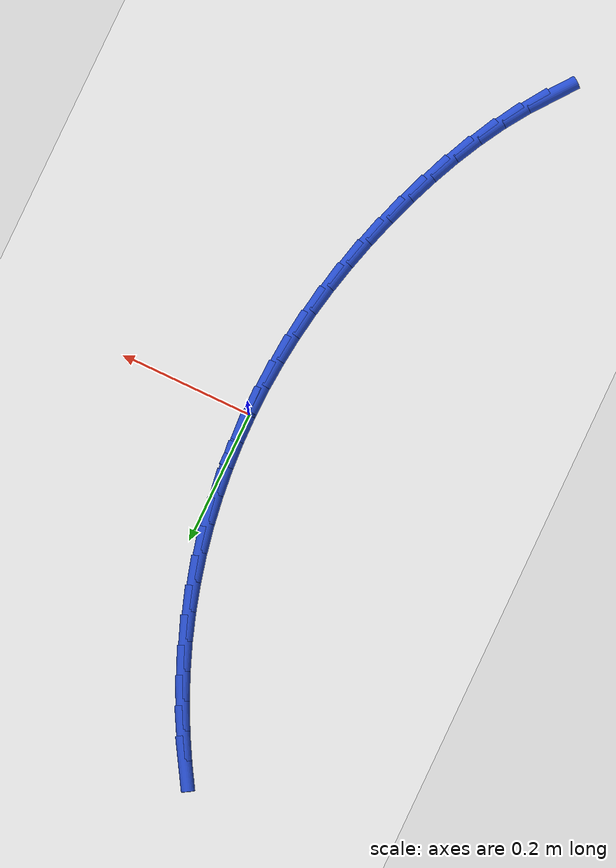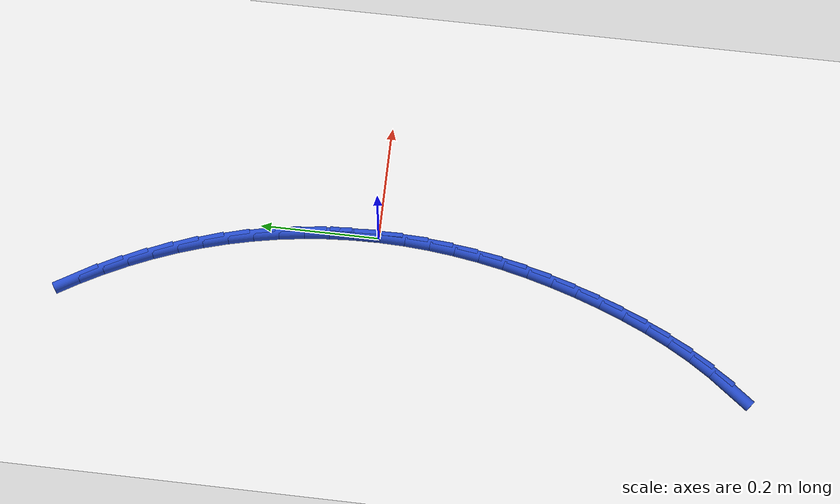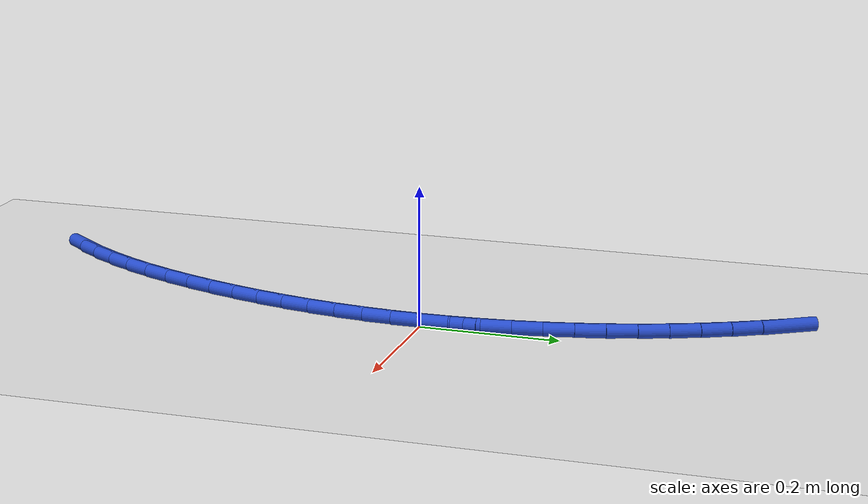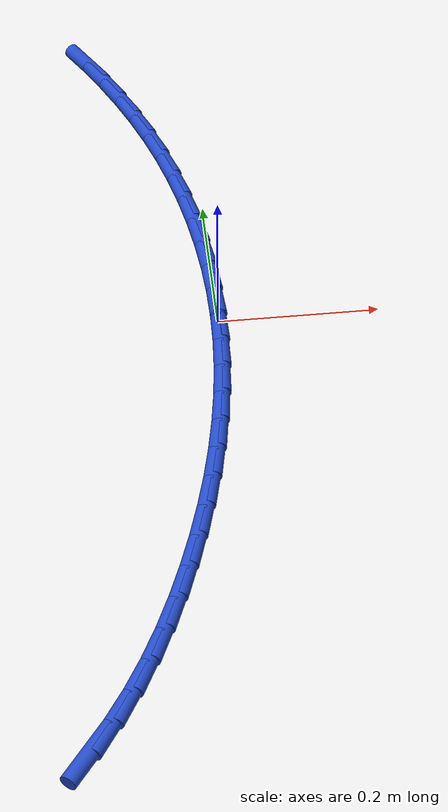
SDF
<sdf version="1.6">
 <world name="default">
  <model name="ground_plane">
   <static>1</static>
   <link name="link">
    <collision name="collision">
     <geometry><plane><normal>0 0 1</normal><size>100 100</size></plane></geometry>
     <surface><friction><ode><mu>100</mu><mu2>50</mu2></ode></friction></surface>
    </collision>
    <visual name="visual">
     <cast_shadows>0</cast_shadows>
     <geometry><plane><normal>0 0 1</normal><size>100 100</size></plane></geometry>
     <material>
      <script><uri>file://media/materials/scripts/gazebo.material</uri><name>Gazebo/WhiteGlow</name></script>
     </material>
    </visual>
   </link>
  </model>
  <model name="line">
   <link name="link_0">
    <pose>1.0408340855860843e-17 -9.020562075079397e-17 0.01 0 1.57 -1.5546237465888721</pose>
    <collision name="collision">
     <geometry><cylinder><radius>0.01</radius><length>0.08</length></cylinder></geometry>
    </collision>
    <visual name="visual">
     <material>
      <script><name>Gazebo/Blue</name><uri>file://media/materials/scripts/gazebo.material</uri></script>
     </material>
     <geometry><cylinder><radius>0.01</radius><length>0.08</length></cylinder></geometry>
    </visual>
   </link>
   <link name="link_1">
    <pose>-0.0006884592536285922 0.042565825681515346 0.01 0 1.57 -1.5107210245905396</pose>
    <collision name="collision">
     <geometry><cylinder><radius>0.01</radius><length>0.08</length></cylinder></geometry>
    </collision>
    <visual name="visual">
     <material>
      <script><name>Gazebo/Blue</name><uri>file://media/materials/scripts/gazebo.material</uri></script>
     </material>
     <geometry><cylinder><radius>0.01</radius><length>0.08</length></cylinder></geometry>
    </visual>
   </link>
   <link name="link_2">
    <pose>-0.0032502172372238136 0.08515696242646373 0.01 0 1.57 -1.4668751654324093</pose>
    <collision name="collision">
     <geometry><cylinder><radius>0.01</radius><length>0.08</length></cylinder></geometry>
    </collision>
    <visual name="visual">
     <material>
      <script><name>Gazebo/Blue</name><uri>file://media/materials/scripts/gazebo.material</uri></script>
     </material>
     <geometry><cylinder><radius>0.01</radius><length>0.08</length></cylinder></geometry>
    </visual>
   </link>
   <link name="link_3">
    <pose>-0.007684354621984845 0.12767153316151478 0.01 0 1.57 -1.4229419530618141</pose>
    <collision name="collision">
     <geometry><cylinder><radius>0.01</radius><length>0.08</length></cylinder></geometry>
    </collision>
    <visual name="visual">
     <material>
      <script><name>Gazebo/Blue</name><uri>file://media/materials/scripts/gazebo.material</uri></script>
     </material>
     <geometry><cylinder><radius>0.01</radius><length>0.08</length></cylinder></geometry>
    </visual>
   </link>
   <link name="link_4">
    <pose>-0.013989952079110876 0.17000766081333846 0.01 0 1.57 -1.378779926097526</pose>
    <collision name="collision">
     <geometry><cylinder><radius>0.01</radius><length>0.08</length></cylinder></geometry>
    </collision>
    <visual name="visual">
     <material>
      <script><name>Gazebo/Blue</name><uri>file://media/materials/scripts/gazebo.material</uri></script>
     </material>
     <geometry><cylinder><radius>0.01</radius><length>0.08</length></cylinder></geometry>
    </visual>
   </link>
   <link name="link_5">
    <pose>-0.022166090279801084 0.21206346830860454 0.01 0 1.57 -1.3342511522537939</pose>
    <collision name="collision">
     <geometry><cylinder><radius>0.01</radius><length>0.08</length></cylinder></geometry>
    </collision>
    <visual name="visual">
     <material>
      <script><name>Gazebo/Blue</name><uri>file://media/materials/scripts/gazebo.material</uri></script>
     </material>
     <geometry><cylinder><radius>0.01</radius><length>0.08</length></cylinder></geometry>
    </visual>
   </link>
   <link name="link_6">
    <pose>-0.03221184989525467 0.25373707857398287 0.01 0 1.57 -1.289222159543858</pose>
    <collision name="collision">
     <geometry><cylinder><radius>0.01</radius><length>0.08</length></cylinder></geometry>
    </collision>
    <visual name="visual">
     <material>
      <script><name>Gazebo/Blue</name><uri>file://media/materials/scripts/gazebo.material</uri></script>
     </material>
     <geometry><cylinder><radius>0.01</radius><length>0.08</length></cylinder></geometry>
    </visual>
   </link>
   <link name="link_7">
    <pose>-0.044126311596670825 0.2949266145361432 0.01 0 1.57 -1.2435650959692932</pose>
    <collision name="collision">
     <geometry><cylinder><radius>0.01</radius><length>0.08</length></cylinder></geometry>
    </collision>
    <visual name="visual">
     <material>
      <script><name>Gazebo/Blue</name><uri>file://media/materials/scripts/gazebo.material</uri></script>
     </material>
     <geometry><cylinder><radius>0.01</radius><length>0.08</length></cylinder></geometry>
    </visual>
   </link>
   <link name="link_8">
    <pose>-0.05790855605524872 0.3355301991217555 0.01 0 1.57 -1.1973716169454367</pose>
    <collision name="collision">
     <geometry><cylinder><radius>0.01</radius><length>0.08</length></cylinder></geometry>
    </collision>
    <visual name="visual">
     <material>
      <script><name>Gazebo/Blue</name><uri>file://media/materials/scripts/gazebo.material</uri></script>
     </material>
     <geometry><cylinder><radius>0.01</radius><length>0.08</length></cylinder></geometry>
    </visual>
   </link>
   <link name="link_9">
    <pose>-0.07355068104961641 0.3754530993383196 0.01 0 1.57 -1.1519583990495712</pose>
    <collision name="collision">
     <geometry><cylinder><radius>0.01</radius><length>0.08</length></cylinder></geometry>
    </collision>
    <visual name="visual">
     <material>
      <script><name>Gazebo/Blue</name><uri>file://media/materials/scripts/gazebo.material</uri></script>
     </material>
     <geometry><cylinder><radius>0.01</radius><length>0.08</length></cylinder></geometry>
    </visual>
   </link>
   <link name="link_10">
    <pose>-0.0909991295758974 0.41464729083924035 0.01 0 1.57 -1.1078825353732706</pose>
    <collision name="collision">
     <geometry><cylinder><radius>0.01</radius><length>0.08</length></cylinder></geometry>
    </collision>
    <visual name="visual">
     <material>
      <script><name>Gazebo/Blue</name><uri>file://media/materials/scripts/gazebo.material</uri></script>
     </material>
     <geometry><cylinder><radius>0.01</radius><length>0.08</length></cylinder></geometry>
    </visual>
   </link>
   <link name="link_11">
    <pose>-0.11018199952944982 0.45308351784429574 0.01 0 1.57 -1.0651360473864284</pose>
    <collision name="collision">
     <geometry><cylinder><radius>0.01</radius><length>0.08</length></cylinder></geometry>
    </collision>
    <visual name="visual">
     <material>
      <script><name>Gazebo/Blue</name><uri>file://media/materials/scripts/gazebo.material</uri></script>
     </material>
     <geometry><cylinder><radius>0.01</radius><length>0.08</length></cylinder></geometry>
    </visual>
   </link>
   <link name="link_12">
    <pose>-0.1310273390686445 0.490732575458346 0.01 0 1.57 -1.023691318211184</pose>
    <collision name="collision">
     <geometry><cylinder><radius>0.01</radius><length>0.08</length></cylinder></geometry>
    </collision>
    <visual name="visual">
     <material>
      <script><name>Gazebo/Blue</name><uri>file://media/materials/scripts/gazebo.material</uri></script>
     </material>
     <geometry><cylinder><radius>0.01</radius><length>0.08</length></cylinder></geometry>
    </visual>
   </link>
   <link name="link_165">
    <pose>-0.19672562191018603 -0.6021617446751372 0.01 0 1.57 0.9189061466594197</pose>
    <collision name="collision">
     <geometry><cylinder><radius>0.01</radius><length>0.08</length></cylinder></geometry>
    </collision>
    <visual name="visual">
     <material>
      <script><name>Gazebo/Blue</name><uri>file://media/materials/scripts/gazebo.material</uri></script>
     </material>
     <geometry><cylinder><radius>0.01</radius><length>0.08</length></cylinder></geometry>
    </visual>
   </link>
   <link name="link_166">
    <pose>-0.1711418407726723 -0.5686396336627135 0.01 0 1.57 0.9873654444688674</pose>
    <collision name="collision">
     <geometry><cylinder><radius>0.01</radius><length>0.08</length></cylinder></geometry>
    </collision>
    <visual name="visual">
     <material>
      <script><name>Gazebo/Blue</name><uri>file://media/materials/scripts/gazebo.material</uri></script>
     </material>
     <geometry><cylinder><radius>0.01</radius><length>0.08</length></cylinder></geometry>
    </visual>
   </link>
   <link name="link_167">
    <pose>-0.14765230553840727 -0.533053908735533 0.01 0 1.57 1.0483091614103093</pose>
    <collision name="collision">
     <geometry><cylinder><radius>0.01</radius><length>0.08</length></cylinder></geometry>
    </collision>
    <visual name="visual">
     <material>
      <script><name>Gazebo/Blue</name><uri>file://media/materials/scripts/gazebo.material</uri></script>
     </material>
     <geometry><cylinder><radius>0.01</radius><length>0.08</length></cylinder></geometry>
    </visual>
   </link>
   <link name="link_168">
    <pose>-0.12615546757100377 -0.49572452432585634 0.01 0 1.57 1.1024295643057305</pose>
    <collision name="collision">
     <geometry><cylinder><radius>0.01</radius><length>0.08</length></cylinder></geometry>
    </collision>
    <visual name="visual">
     <material>
      <script><name>Gazebo/Blue</name><uri>file://media/materials/scripts/gazebo.material</uri></script>
     </material>
     <geometry><cylinder><radius>0.01</radius><length>0.08</length></cylinder></geometry>
    </visual>
   </link>
   <link name="link_169">
    <pose>-0.1065497782340746 -0.45697143486594427 0.01 0 1.57 1.1504382907842428</pose>
    <collision name="collision">
     <geometry><cylinder><radius>0.01</radius><length>0.08</length></cylinder></geometry>
    </collision>
    <visual name="visual">
     <material>
      <script><name>Gazebo/Blue</name><uri>file://media/materials/scripts/gazebo.material</uri></script>
     </material>
     <geometry><cylinder><radius>0.01</radius><length>0.08</length></cylinder></geometry>
    </visual>
   </link>
   <link name="link_170">
    <pose>-0.08873368889123227 -0.41711459478805707 0.01 0 1.57 1.1930126331087734</pose>
    <collision name="collision">
     <geometry><cylinder><radius>0.01</radius><length>0.08</length></cylinder></geometry>
    </collision>
    <visual name="visual">
     <material>
      <script><name>Gazebo/Blue</name><uri>file://media/materials/scripts/gazebo.material</uri></script>
     </material>
     <geometry><cylinder><radius>0.01</radius><length>0.08</length></cylinder></geometry>
    </visual>
   </link>
   <link name="link_171">
    <pose>-0.07260565090609034 -0.37647395852445675 0.01 0 1.57 1.230770698600443</pose>
    <collision name="collision">
     <geometry><cylinder><radius>0.01</radius><length>0.08</length></cylinder></geometry>
    </collision>
    <visual name="visual">
     <material>
      <script><name>Gazebo/Blue</name><uri>file://media/materials/scripts/gazebo.material</uri></script>
     </material>
     <geometry><cylinder><radius>0.01</radius><length>0.08</length></cylinder></geometry>
    </visual>
   </link>
   <link name="link_172">
    <pose>-0.05806421873758209 -0.335369262337252 0.01 0 1.57 1.2656474640445996</pose>
    <collision name="collision">
     <geometry><cylinder><radius>0.01</radius><length>0.08</length></cylinder></geometry>
    </collision>
    <visual name="visual">
     <material>
      <script><name>Gazebo/Blue</name><uri>file://media/materials/scripts/gazebo.material</uri></script>
     </material>
     <geometry><cylinder><radius>0.01</radius><length>0.08</length></cylinder></geometry>
    </visual>
   </link>
   <link name="link_173">
    <pose>-0.04504597275144565 -0.2940397721260384 0.01 0 1.57 1.3013746991042703</pose>
    <collision name="collision">
     <geometry><cylinder><radius>0.01</radius><length>0.08</length></cylinder></geometry>
    </collision>
    <visual name="visual">
     <material>
      <script><name>Gazebo/Blue</name><uri>file://media/materials/scripts/gazebo.material</uri></script>
     </material>
     <geometry><cylinder><radius>0.01</radius><length>0.08</length></cylinder></geometry>
    </visual>
   </link>
   <link name="link_174">
    <pose>-0.03358212699937773 -0.25252449013715295 0.01 0 1.57 1.338485360388163</pose>
    <collision name="collision">
     <geometry><cylinder><radius>0.01</radius><length>0.08</length></cylinder></geometry>
    </collision>
    <visual name="visual">
     <material>
      <script><name>Gazebo/Blue</name><uri>file://media/materials/scripts/gazebo.material</uri></script>
     </material>
     <geometry><cylinder><radius>0.01</radius><length>0.08</length></cylinder></geometry>
    </visual>
   </link>
   <link name="link_175">
    <pose>-0.023718369742049567 -0.21083178831929683 0.01 0 1.57 1.376949038703925</pose>
    <collision name="collision">
     <geometry><cylinder><radius>0.01</radius><length>0.08</length></cylinder></geometry>
    </collision>
    <visual name="visual">
     <material>
      <script><name>Gazebo/Blue</name><uri>file://media/materials/scripts/gazebo.material</uri></script>
     </material>
     <geometry><cylinder><radius>0.01</radius><length>0.08</length></cylinder></geometry>
    </visual>
   </link>
   <link name="link_176">
    <pose>-0.015500389240132313 -0.16897003862117052 0.01 0 1.57 1.4167170220263336</pose>
    <collision name="collision">
     <geometry><cylinder><radius>0.01</radius><length>0.08</length></cylinder></geometry>
    </collision>
    <visual name="visual">
     <material>
      <script><name>Gazebo/Blue</name><uri>file://media/materials/scripts/gazebo.material</uri></script>
     </material>
     <geometry><cylinder><radius>0.01</radius><length>0.08</length></cylinder></geometry>
    </visual>
   </link>
   <link name="link_177">
    <pose>-0.008973873754297564 -0.12694761299147694 0.01 0 1.57 1.4577207379638824</pose>
    <collision name="collision">
     <geometry><cylinder><radius>0.01</radius><length>0.08</length></cylinder></geometry>
    </collision>
    <visual name="visual">
     <material>
      <script><name>Gazebo/Blue</name><uri>file://media/materials/scripts/gazebo.material</uri></script>
     </material>
     <geometry><cylinder><radius>0.01</radius><length>0.08</length></cylinder></geometry>
    </visual>
   </link>
   <link name="link_178">
    <pose>-0.004184511545216405 -0.08477288337891646 0.01 0 1.57 1.4998707000178106</pose>
    <collision name="collision">
     <geometry><cylinder><radius>0.01</radius><length>0.08</length></cylinder></geometry>
    </collision>
    <visual name="visual">
     <material>
      <script><name>Gazebo/Blue</name><uri>file://media/materials/scripts/gazebo.material</uri></script>
     </material>
     <geometry><cylinder><radius>0.01</radius><length>0.08</length></cylinder></geometry>
    </visual>
   </link>
   <link name="link_179">
    <pose>-0.0011779908735601204 -0.04245422173219045 0.01 0 1.57 1.5430561245733583</pose>
    <collision name="collision">
     <geometry><cylinder><radius>0.01</radius><length>0.08</length></cylinder></geometry>
    </collision>
    <visual name="visual">
     <material>
      <script><name>Gazebo/Blue</name><uri>file://media/materials/scripts/gazebo.material</uri></script>
     </material>
     <geometry><cylinder><radius>0.01</radius><length>0.08</length></cylinder></geometry>
    </visual>
   </link>
   <link name="link_180">
    <pose>1.9949319973733282e-17 -6.938893903907228e-17 0.01 0 1.57 -1.5544472872851836</pose>
    <collision name="collision">
     <geometry><cylinder><radius>0.01</radius><length>0.08</length></cylinder></geometry>
    </collision>
    <visual name="visual">
     <material>
      <script><name>Gazebo/Blue</name><uri>file://media/materials/scripts/gazebo.material</uri></script>
     </material>
     <geometry><cylinder><radius>0.01</radius><length>0.08</length></cylinder></geometry>
    </visual>
   </link>
   <link name="link_181">
    <pose>-0.0006962271852072599 0.042581409868953354 0.01 0 1.57 -1.5544472872851838</pose>
    <collision name="collision">
     <geometry><cylinder><radius>0.01</radius><length>0.08</length></cylinder></geometry>
    </collision>
    <visual name="visual">
     <material>
      <script><name>Gazebo/Blue</name><uri>file://media/materials/scripts/gazebo.material</uri></script>
     </material>
     <geometry><cylinder><radius>0.01</radius><length>0.08</length></cylinder></geometry>
    </visual>
   </link>
  </model>
 </world>
</sdf>
